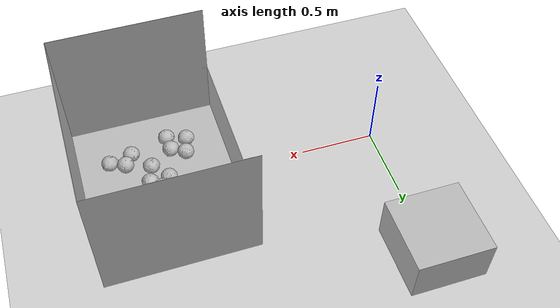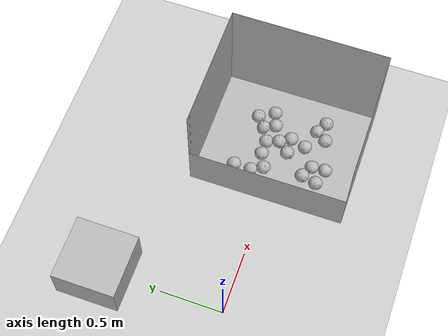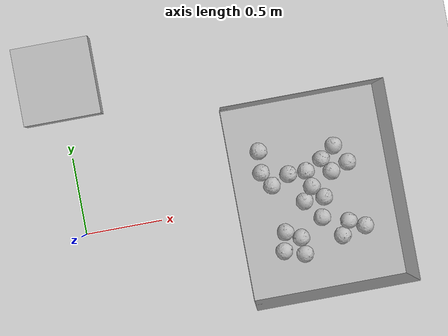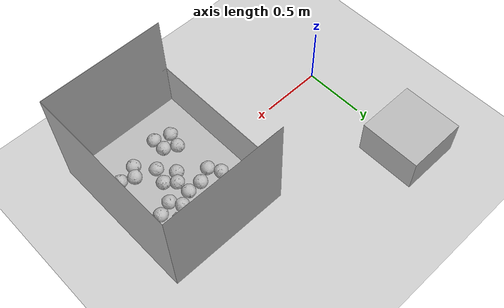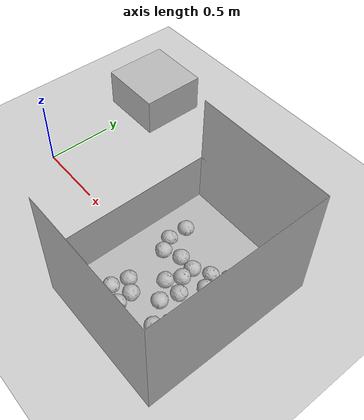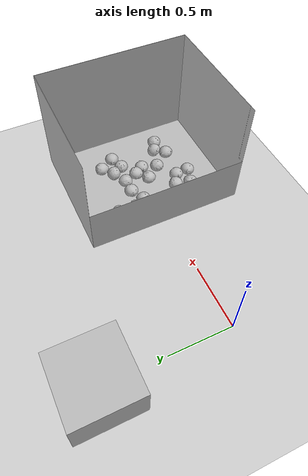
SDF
<sdf version="1.6">
 <world name="default">
  <model name="ground_plane">
   <static>1</static>
   <link name="link">
    <collision name="collision">
     <geometry><plane><normal>0 0 1</normal><size>100 100</size></plane></geometry>
     <surface>
      <contact><collide_bitmask>65535</collide_bitmask></contact>
      <friction><ode><mu>100</mu><mu2>50</mu2></ode></friction>
     </surface>
    </collision>
    <visual name="visual">
     <cast_shadows>0</cast_shadows>
     <geometry><plane><normal>0 0 1</normal><size>100 100</size></plane></geometry>
     <material>
      <script><uri>file://media/materials/scripts/gazebo.material</uri><name>Gazebo/Grey</name></script>
     </material>
    </visual>
   </link>
  </model>
  <light name="sun" type="directional">
   <pose>0 0 10 0 -0 0</pose>
   <diffuse>0.8 0.8 0.8 1</diffuse>
   <specular>0.2 0.2 0.2 1</specular>
   <attenuation>
    <range>1000</range>
    <constant>0.9</constant>
    <linear>0.01</linear>
    <quadratic>0.001</quadratic>
   </attenuation>
   <direction>-0.5 0.1 -0.9</direction>
  </light>
  <model name="mytable">
   <static>1</static>
   <link name="link">
    <inertial>
     <mass>100</mass>
     <inertia><ixx>0.083</ixx><ixy>0</ixy><ixz>0</ixz><iyy>0.083</iyy><iyz>0</iyz><izz>0.083</izz></inertia>
    </inertial>
    <collision name="collision"><geometry><box><size>0.5 0.5 0.4</size></box></geometry></collision>
    <visual name="visual"><geometry><box><size>0.5 0.5 0.4</size></box></geometry></visual>
   </link>
   <pose>0 1 0.1 0 -0 0</pose>
  </model>
  <model name="container">
   <static>1</static>
   <link name="link">
    <inertial>
     <mass>100</mass>
     <inertia><ixx>1</ixx><ixy>0</ixy><ixz>0</ixz><iyy>1</iyy><iyz>0</iyz><izz>1</izz></inertia>
    </inertial>
    <collision name="collision">
     <geometry>
      <mesh>
       <scale>0.001 0.001 0.001</scale>
       <uri>model://big_container_open/big_container_open_meshlab.dae</uri>
      </mesh>
     </geometry>
     <surface>
      <friction><ode><mu>0.6</mu><mu2>0.6</mu2></ode></friction>
      <contact><ode><max_vel>0.1</max_vel><min_depth>0.0001</min_depth></ode></contact>
     </surface>
    </collision>
    <visual name="visual">
     <geometry>
      <mesh>
       <scale>0.001 0.001 0.001</scale>
       <uri>model://big_container_open/big_container_open_meshlab.dae</uri>
      </mesh>
     </geometry>
    </visual>
   </link>
   <pose>1.5 0 0 0 0 -1.57</pose>
  </model>
  <gravity>0 0 -9.8</gravity>
  <magnetic_field>6e-06 2.3e-05 -4.2e-05</magnetic_field>
  <atmosphere type="adiabatic"/>
  <physics name="default_physics" default="0" type="ode">
   <max_step_size>0.001</max_step_size>
   <real_time_factor>1</real_time_factor>
   <real_time_update_rate>1000</real_time_update_rate>
  </physics>
  <scene><ambient>0.4 0.4 0.4 1</ambient><background>0.7 0.7 0.7 1</background><shadows>1</shadows></scene>
  <audio><device>default</device></audio>
  <spherical_coordinates>
   <surface_model>EARTH_WGS84</surface_model>
   <latitude_deg>0</latitude_deg>
   <longitude_deg>0</longitude_deg>
   <elevation>0</elevation>
   <heading_deg>0</heading_deg>
  </spherical_coordinates>
  <model name="cabbage_1">
   <link name="link">
    <inertial>
     <mass>1</mass>
     <inertia><ixx>0.001</ixx><ixy>0</ixy><ixz>0</ixz><iyy>0.001</iyy><iyz>0</iyz><izz>0.001</izz></inertia>
    </inertial>
    <collision name="collision">
     <geometry>
      <mesh><scale>0.001 0.001 0.001</scale><uri>model://cabbage/cabbage_single.dae</uri></mesh>
     </geometry>
     <surface>
      <friction><ode><mu>0.8</mu><mu2>0.8</mu2></ode></friction>
      <contact><ode><max_vel>0.1</max_vel><min_depth>0.0001</min_depth></ode></contact>
     </surface>
    </collision>
    <visual name="visual">
     <geometry>
      <mesh><scale>0.001 0.001 0.001</scale><uri>model://cabbage/cabbage_single.dae</uri></mesh>
     </geometry>
     <material><script><uri>model://cabbage/texture.material</uri><name>CabbageTexture</name></script></material>
    </visual>
   </link>
   <pose>1.56593 -0.039478 0.004034 1.57569 0.008746 -0.71575</pose>
  </model>
  <model name="cabbage_2">
   <link name="link">
    <inertial>
     <mass>1</mass>
     <inertia><ixx>0.001</ixx><ixy>0</ixy><ixz>0</ixz><iyy>0.001</iyy><iyz>0</iyz><izz>0.001</izz></inertia>
    </inertial>
    <collision name="collision">
     <geometry>
      <mesh><scale>0.001 0.001 0.001</scale><uri>model://cabbage/cabbage_single.dae</uri></mesh>
     </geometry>
     <surface>
      <friction><ode><mu>0.8</mu><mu2>0.8</mu2></ode></friction>
      <contact><ode><max_vel>0.1</max_vel><min_depth>0.0001</min_depth></ode></contact>
     </surface>
    </collision>
    <visual name="visual">
     <geometry>
      <mesh><scale>0.001 0.001 0.001</scale><uri>model://cabbage/cabbage_single.dae</uri></mesh>
     </geometry>
     <material><script><uri>model://cabbage/texture.material</uri><name>CabbageTexture</name></script></material>
    </visual>
   </link>
   <pose>1.75565 0.156924 0.004034 1.57598 0.00864 -1.02727</pose>
  </model>
  <model name="cabbage_3">
   <link name="link">
    <inertial>
     <mass>1</mass>
     <inertia><ixx>0.001</ixx><ixy>0</ixy><ixz>0</ixz><iyy>0.001</iyy><iyz>0</iyz><izz>0.001</izz></inertia>
    </inertial>
    <collision name="collision">
     <geometry>
      <mesh><scale>0.001 0.001 0.001</scale><uri>model://cabbage/cabbage_single.dae</uri></mesh>
     </geometry>
     <surface>
      <friction><ode><mu>0.8</mu><mu2>0.8</mu2></ode></friction>
      <contact><ode><max_vel>0.1</max_vel><min_depth>0.0001</min_depth></ode></contact>
     </surface>
    </collision>
    <visual name="visual">
     <geometry>
      <mesh><scale>0.001 0.001 0.001</scale><uri>model://cabbage/cabbage_single.dae</uri></mesh>
     </geometry>
     <material><script><uri>model://cabbage/texture.material</uri><name>CabbageTexture</name></script></material>
    </visual>
   </link>
   <pose>1.36166 0.148036 0.004031 1.5761 0.008414 -0.667211</pose>
  </model>
  <model name="cabbage_4">
   <link name="link">
    <inertial>
     <mass>1</mass>
     <inertia><ixx>0.001</ixx><ixy>0</ixy><ixz>0</ixz><iyy>0.001</iyy><iyz>0</iyz><izz>0.001</izz></inertia>
    </inertial>
    <collision name="collision">
     <geometry>
      <mesh><scale>0.001 0.001 0.001</scale><uri>model://cabbage/cabbage_single.dae</uri></mesh>
     </geometry>
     <surface>
      <friction><ode><mu>0.8</mu><mu2>0.8</mu2></ode></friction>
      <contact><ode><max_vel>0.1</max_vel><min_depth>0.0001</min_depth></ode></contact>
     </surface>
    </collision>
    <visual name="visual">
     <geometry>
      <mesh><scale>0.001 0.001 0.001</scale><uri>model://cabbage/cabbage_single.dae</uri></mesh>
     </geometry>
     <material><script><uri>model://cabbage/texture.material</uri><name>CabbageTexture</name></script></material>
    </visual>
   </link>
   <pose>1.79345 -0.273771 0.004036 1.57553 0.008169 -3.14021</pose>
  </model>
  <model name="cabbage_5">
   <link name="link">
    <inertial>
     <mass>1</mass>
     <inertia><ixx>0.001</ixx><ixy>0</ixy><ixz>0</ixz><iyy>0.001</iyy><iyz>0</iyz><izz>0.001</izz></inertia>
    </inertial>
    <collision name="collision">
     <geometry>
      <mesh><scale>0.001 0.001 0.001</scale><uri>model://cabbage/cabbage_single.dae</uri></mesh>
     </geometry>
     <surface>
      <friction><ode><mu>0.8</mu><mu2>0.8</mu2></ode></friction>
      <contact><ode><max_vel>0.1</max_vel><min_depth>0.0001</min_depth></ode></contact>
     </surface>
    </collision>
    <visual name="visual">
     <geometry>
      <mesh><scale>0.001 0.001 0.001</scale><uri>model://cabbage/cabbage_single.dae</uri></mesh>
     </geometry>
     <material><script><uri>model://cabbage/texture.material</uri><name>CabbageTexture</name></script></material>
    </visual>
   </link>
   <pose>1.36296 -0.275363 0.006214 1.39997 0.132174 -0.63434</pose>
  </model>
  <model name="cabbage_6">
   <link name="link">
    <inertial>
     <mass>1</mass>
     <inertia><ixx>0.001</ixx><ixy>0</ixy><ixz>0</ixz><iyy>0.001</iyy><iyz>0</iyz><izz>0.001</izz></inertia>
    </inertial>
    <collision name="collision">
     <geometry>
      <mesh><scale>0.001 0.001 0.001</scale><uri>model://cabbage/cabbage_single.dae</uri></mesh>
     </geometry>
     <surface>
      <friction><ode><mu>0.8</mu><mu2>0.8</mu2></ode></friction>
      <contact><ode><max_vel>0.1</max_vel><min_depth>0.0001</min_depth></ode></contact>
     </surface>
    </collision>
    <visual name="visual">
     <geometry>
      <mesh><scale>0.001 0.001 0.001</scale><uri>model://cabbage/cabbage_single.dae</uri></mesh>
     </geometry>
     <material><script><uri>model://cabbage/texture.material</uri><name>CabbageTexture</name></script></material>
    </visual>
   </link>
   <pose>1.43267 -0.044414 0.004033 1.57597 0.008782 0.309043</pose>
  </model>
  <model name="cabbage_7">
   <link name="link">
    <inertial>
     <mass>1</mass>
     <inertia><ixx>0.001</ixx><ixy>0</ixy><ixz>0</ixz><iyy>0.001</iyy><iyz>0</iyz><izz>0.001</izz></inertia>
    </inertial>
    <collision name="collision">
     <geometry>
      <mesh><scale>0.001 0.001 0.001</scale><uri>model://cabbage/cabbage_single.dae</uri></mesh>
     </geometry>
     <surface>
      <friction><ode><mu>0.8</mu><mu2>0.8</mu2></ode></friction>
      <contact><ode><max_vel>0.1</max_vel><min_depth>0.0001</min_depth></ode></contact>
     </surface>
    </collision>
    <visual name="visual">
     <geometry>
      <mesh><scale>0.001 0.001 0.001</scale><uri>model://cabbage/cabbage_single.dae</uri></mesh>
     </geometry>
     <material><script><uri>model://cabbage/texture.material</uri><name>CabbageTexture</name></script></material>
    </visual>
   </link>
   <pose>1.63886 0.116021 0.00402 1.57398 0.008755 1.22043</pose>
  </model>
  <model name="cabbage_8">
   <link name="link">
    <inertial>
     <mass>1</mass>
     <inertia><ixx>0.001</ixx><ixy>0</ixy><ixz>0</ixz><iyy>0.001</iyy><iyz>0</iyz><izz>0.001</izz></inertia>
    </inertial>
    <collision name="collision">
     <geometry>
      <mesh><scale>0.001 0.001 0.001</scale><uri>model://cabbage/cabbage_single.dae</uri></mesh>
     </geometry>
     <surface>
      <friction><ode><mu>0.8</mu><mu2>0.8</mu2></ode></friction>
      <contact><ode><max_vel>0.1</max_vel><min_depth>0.0001</min_depth></ode></contact>
     </surface>
    </collision>
    <visual name="visual">
     <geometry>
      <mesh><scale>0.001 0.001 0.001</scale><uri>model://cabbage/cabbage_single.dae</uri></mesh>
     </geometry>
     <material><script><uri>model://cabbage/texture.material</uri><name>CabbageTexture</name></script></material>
    </visual>
   </link>
   <pose>1.24003 0.092095 0.004713 1.50926 -0.075633 -3.01724</pose>
  </model>
  <model name="cabbage_9">
   <link name="link">
    <inertial>
     <mass>1</mass>
     <inertia><ixx>0.001</ixx><ixy>0</ixy><ixz>0</ixz><iyy>0.001</iyy><iyz>0</iyz><izz>0.001</izz></inertia>
    </inertial>
    <collision name="collision">
     <geometry>
      <mesh><scale>0.001 0.001 0.001</scale><uri>model://cabbage/cabbage_single.dae</uri></mesh>
     </geometry>
     <surface>
      <friction><ode><mu>0.8</mu><mu2>0.8</mu2></ode></friction>
      <contact><ode><max_vel>0.1</max_vel><min_depth>0.0001</min_depth></ode></contact>
     </surface>
    </collision>
    <visual name="visual">
     <geometry>
      <mesh><scale>0.001 0.001 0.001</scale><uri>model://cabbage/cabbage_single.dae</uri></mesh>
     </geometry>
     <material><script><uri>model://cabbage/texture.material</uri><name>CabbageTexture</name></script></material>
    </visual>
   </link>
   <pose>1.6401 -0.309319 0.004035 1.57601 0.008777 -1.91094</pose>
  </model>
  <model name="cabbage_10">
   <link name="link">
    <inertial>
     <mass>1</mass>
     <inertia><ixx>0.001</ixx><ixy>0</ixy><ixz>0</ixz><iyy>0.001</iyy><iyz>0</iyz><izz>0.001</izz></inertia>
    </inertial>
    <collision name="collision">
     <geometry>
      <mesh><scale>0.001 0.001 0.001</scale><uri>model://cabbage/cabbage_single.dae</uri></mesh>
     </geometry>
     <surface>
      <friction><ode><mu>0.8</mu><mu2>0.8</mu2></ode></friction>
      <contact><ode><max_vel>0.1</max_vel><min_depth>0.0001</min_depth></ode></contact>
     </surface>
    </collision>
    <visual name="visual">
     <geometry>
      <mesh><scale>0.001 0.001 0.001</scale><uri>model://cabbage/cabbage_single.dae</uri></mesh>
     </geometry>
     <material><script><uri>model://cabbage/texture.material</uri><name>CabbageTexture</name></script></material>
    </visual>
   </link>
   <pose>1.24455 -0.343524 0.004036 1.57603 0.008738 2.66101</pose>
  </model>
  <model name="cabbage_11">
   <link name="link">
    <inertial>
     <mass>1</mass>
     <inertia><ixx>0.001</ixx><ixy>0</ixy><ixz>0</ixz><iyy>0.001</iyy><iyz>0</iyz><izz>0.001</izz></inertia>
    </inertial>
    <collision name="collision">
     <geometry>
      <mesh><scale>0.001 0.001 0.001</scale><uri>model://cabbage/cabbage_single.dae</uri></mesh>
     </geometry>
     <surface>
      <friction><ode><mu>0.8</mu><mu2>0.8</mu2></ode></friction>
      <contact><ode><max_vel>0.1</max_vel><min_depth>0.0001</min_depth></ode></contact>
     </surface>
    </collision>
    <visual name="visual">
     <geometry>
      <mesh><scale>0.001 0.001 0.001</scale><uri>model://cabbage/cabbage_single.dae</uri></mesh>
     </geometry>
     <material><script><uri>model://cabbage/texture.material</uri><name>CabbageTexture</name></script></material>
    </visual>
   </link>
   <pose>1.47917 0.14348 0.00405 1.57839 0.007894 -2.62498</pose>
  </model>
  <model name="cabbage_12">
   <link name="link">
    <inertial>
     <mass>1</mass>
     <inertia><ixx>0.001</ixx><ixy>0</ixy><ixz>0</ixz><iyy>0.001</iyy><iyz>0</iyz><izz>0.001</izz></inertia>
    </inertial>
    <collision name="collision">
     <geometry>
      <mesh><scale>0.001 0.001 0.001</scale><uri>model://cabbage/cabbage_single.dae</uri></mesh>
     </geometry>
     <surface>
      <friction><ode><mu>0.8</mu><mu2>0.8</mu2></ode></friction>
      <contact><ode><max_vel>0.1</max_vel><min_depth>0.0001</min_depth></ode></contact>
     </surface>
    </collision>
    <visual name="visual">
     <geometry>
      <mesh><scale>0.001 0.001 0.001</scale><uri>model://cabbage/cabbage_single.dae</uri></mesh>
     </geometry>
     <material><script><uri>model://cabbage/texture.material</uri><name>CabbageTexture</name></script></material>
    </visual>
   </link>
   <pose>1.68205 0.278635 0.004036 1.57612 0.008685 0.396814</pose>
  </model>
  <model name="cabbage_13">
   <link name="link">
    <inertial>
     <mass>1</mass>
     <inertia><ixx>0.001</ixx><ixy>0</ixy><ixz>0</ixz><iyy>0.001</iyy><iyz>0</iyz><izz>0.001</izz></inertia>
    </inertial>
    <collision name="collision">
     <geometry>
      <mesh><scale>0.001 0.001 0.001</scale><uri>model://cabbage/cabbage_single.dae</uri></mesh>
     </geometry>
     <surface>
      <friction><ode><mu>0.8</mu><mu2>0.8</mu2></ode></friction>
      <contact><ode><max_vel>0.1</max_vel><min_depth>0.0001</min_depth></ode></contact>
     </surface>
    </collision>
    <visual name="visual">
     <geometry>
      <mesh><scale>0.001 0.001 0.001</scale><uri>model://cabbage/cabbage_single.dae</uri></mesh>
     </geometry>
     <material><script><uri>model://cabbage/texture.material</uri><name>CabbageTexture</name></script></material>
    </visual>
   </link>
   <pose>1.19484 0.326349 0.004035 1.57594 0.008635 1.83233</pose>
  </model>
  <model name="cabbage_14">
   <link name="link">
    <inertial>
     <mass>1</mass>
     <inertia><ixx>0.001</ixx><ixy>0</ixy><ixz>0</ixz><iyy>0.001</iyy><iyz>0</iyz><izz>0.001</izz></inertia>
    </inertial>
    <collision name="collision">
     <geometry>
      <mesh><scale>0.001 0.001 0.001</scale><uri>model://cabbage/cabbage_single.dae</uri></mesh>
     </geometry>
     <surface>
      <friction><ode><mu>0.8</mu><mu2>0.8</mu2></ode></friction>
      <contact><ode><max_vel>0.1</max_vel><min_depth>0.0001</min_depth></ode></contact>
     </surface>
    </collision>
    <visual name="visual">
     <geometry>
      <mesh><scale>0.001 0.001 0.001</scale><uri>model://cabbage/cabbage_single.dae</uri></mesh>
     </geometry>
     <material><script><uri>model://cabbage/texture.material</uri><name>CabbageTexture</name></script></material>
    </visual>
   </link>
   <pose>1.52575 -0.169427 0.004036 1.57612 0.00862 1.71456</pose>
  </model>
  <model name="cabbage_15">
   <link name="link">
    <inertial>
     <mass>1</mass>
     <inertia><ixx>0.001</ixx><ixy>0</ixy><ixz>0</ixz><iyy>0.001</iyy><iyz>0</iyz><izz>0.001</izz></inertia>
    </inertial>
    <collision name="collision">
     <geometry>
      <mesh><scale>0.001 0.001 0.001</scale><uri>model://cabbage/cabbage_single.dae</uri></mesh>
     </geometry>
     <surface>
      <friction><ode><mu>0.8</mu><mu2>0.8</mu2></ode></friction>
      <contact><ode><max_vel>0.1</max_vel><min_depth>0.0001</min_depth></ode></contact>
     </surface>
    </collision>
    <visual name="visual">
     <geometry>
      <mesh><scale>0.001 0.001 0.001</scale><uri>model://cabbage/cabbage_single.dae</uri></mesh>
     </geometry>
     <material><script><uri>model://cabbage/texture.material</uri><name>CabbageTexture</name></script></material>
    </visual>
   </link>
   <pose>1.2852 -0.22588 0.007006 1.44145 -0.246128 -0.111939</pose>
  </model>
  <model name="cabbage_16">
   <link name="link">
    <inertial>
     <mass>1</mass>
     <inertia><ixx>0.001</ixx><ixy>0</ixy><ixz>0</ixz><iyy>0.001</iyy><iyz>0</iyz><izz>0.001</izz></inertia>
    </inertial>
    <collision name="collision">
     <geometry>
      <mesh><scale>0.001 0.001 0.001</scale><uri>model://cabbage/cabbage_single.dae</uri></mesh>
     </geometry>
     <surface>
      <friction><ode><mu>0.8</mu><mu2>0.8</mu2></ode></friction>
      <contact><ode><max_vel>0.1</max_vel><min_depth>0.0001</min_depth></ode></contact>
     </surface>
    </collision>
    <visual name="visual">
     <geometry>
      <mesh><scale>0.001 0.001 0.001</scale><uri>model://cabbage/cabbage_single.dae</uri></mesh>
     </geometry>
     <material><script><uri>model://cabbage/texture.material</uri><name>CabbageTexture</name></script></material>
    </visual>
   </link>
   <pose>1.49394 0.048282 0.031097 1.68054 0.085191 -0.126852</pose>
  </model>
  <model name="cabbage_17">
   <link name="link">
    <inertial>
     <mass>1</mass>
     <inertia><ixx>0.001</ixx><ixy>0</ixy><ixz>0</ixz><iyy>0.001</iyy><iyz>0</iyz><izz>0.001</izz></inertia>
    </inertial>
    <collision name="collision">
     <geometry>
      <mesh><scale>0.001 0.001 0.001</scale><uri>model://cabbage/cabbage_single.dae</uri></mesh>
     </geometry>
     <surface>
      <friction><ode><mu>0.8</mu><mu2>0.8</mu2></ode></friction>
      <contact><ode><max_vel>0.1</max_vel><min_depth>0.0001</min_depth></ode></contact>
     </surface>
    </collision>
    <visual name="visual">
     <geometry>
      <mesh><scale>0.001 0.001 0.001</scale><uri>model://cabbage/cabbage_single.dae</uri></mesh>
     </geometry>
     <material><script><uri>model://cabbage/texture.material</uri><name>CabbageTexture</name></script></material>
    </visual>
   </link>
   <pose>1.60011 0.179474 0.02348 1.62993 -0.743958 -1.3018</pose>
  </model>
  <model name="cabbage_18">
   <link name="link">
    <inertial>
     <mass>1</mass>
     <inertia><ixx>0.001</ixx><ixy>0</ixy><ixz>0</ixz><iyy>0.001</iyy><iyz>0</iyz><izz>0.001</izz></inertia>
    </inertial>
    <collision name="collision">
     <geometry>
      <mesh><scale>0.001 0.001 0.001</scale><uri>model://cabbage/cabbage_single.dae</uri></mesh>
     </geometry>
     <surface>
      <friction><ode><mu>0.8</mu><mu2>0.8</mu2></ode></friction>
      <contact><ode><max_vel>0.1</max_vel><min_depth>0.0001</min_depth></ode></contact>
     </surface>
    </collision>
    <visual name="visual">
     <geometry>
      <mesh><scale>0.001 0.001 0.001</scale><uri>model://cabbage/cabbage_single.dae</uri></mesh>
     </geometry>
     <material><script><uri>model://cabbage/texture.material</uri><name>CabbageTexture</name></script></material>
    </visual>
   </link>
   <pose>1.19901 0.170826 0.011859 1.46817 -0.449744 -0.885388</pose>
  </model>
  <model name="cabbage_19">
   <link name="link">
    <inertial>
     <mass>1</mass>
     <inertia><ixx>0.001</ixx><ixy>0</ixy><ixz>0</ixz><iyy>0.001</iyy><iyz>0</iyz><izz>0.001</izz></inertia>
    </inertial>
    <collision name="collision">
     <geometry>
      <mesh><scale>0.001 0.001 0.001</scale><uri>model://cabbage/cabbage_single.dae</uri></mesh>
     </geometry>
     <surface>
      <friction><ode><mu>0.8</mu><mu2>0.8</mu2></ode></friction>
      <contact><ode><max_vel>0.1</max_vel><min_depth>0.0001</min_depth></ode></contact>
     </surface>
    </collision>
    <visual name="visual">
     <geometry>
      <mesh><scale>0.001 0.001 0.001</scale><uri>model://cabbage/cabbage_single.dae</uri></mesh>
     </geometry>
     <material><script><uri>model://cabbage/texture.material</uri><name>CabbageTexture</name></script></material>
    </visual>
   </link>
   <pose>1.68541 -0.243604 0.021483 0.914534 0.028534 -0.287832</pose>
  </model>
  <model name="cabbage_20">
   <link name="link">
    <inertial>
     <mass>1</mass>
     <inertia><ixx>0.001</ixx><ixy>0</ixy><ixz>0</ixz><iyy>0.001</iyy><iyz>0</iyz><izz>0.001</izz></inertia>
    </inertial>
    <collision name="collision">
     <geometry>
      <mesh><scale>0.001 0.001 0.001</scale><uri>model://cabbage/cabbage_single.dae</uri></mesh>
     </geometry>
     <surface>
      <friction><ode><mu>0.8</mu><mu2>0.8</mu2></ode></friction>
      <contact><ode><max_vel>0.1</max_vel><min_depth>0.0001</min_depth></ode></contact>
     </surface>
    </collision>
    <visual name="visual">
     <geometry>
      <mesh><scale>0.001 0.001 0.001</scale><uri>model://cabbage/cabbage_single.dae</uri></mesh>
     </geometry>
     <material><script><uri>model://cabbage/texture.material</uri><name>CabbageTexture</name></script></material>
    </visual>
   </link>
   <pose>1.37183 -0.373249 0.007973 1.51874 0.285758 -1.18966</pose>
  </model>
 </world>
</sdf>
